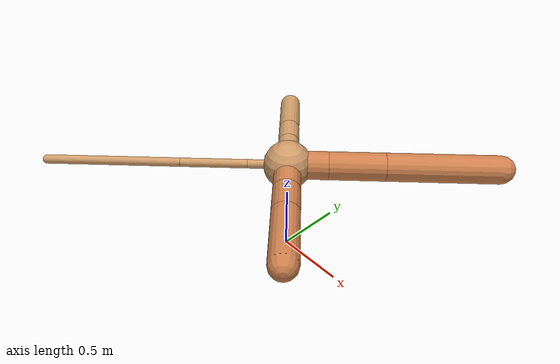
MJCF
<?xml version="1.0" ?>
<mujoco model="ant">

	<compiler angle="degree" coordinate="local" inertiafromgeom="true"/>

	<option integrator="RK4" timestep="0.01"/>

	<custom>

		<numeric data="0.0 0.0 0.55 1.0 0.0 0.0 0.0 0.0 1.0 0.0 -1.0 0.0 -1.0 0.0 1.0" name="init_qpos"/>

	</custom>

	<default>

		<joint armature="1" damping="1" limited="true"/>

		<geom conaffinity="0" condim="3" density="5.0" friction="1.5 0.1 0.1" margin="0.01" rgba="0.8 0.6 0.4 1"/>

	</default>

	<worldbody>

		<body name="torso" pos="0 0 0.75">

			<geom name="torso_geom" pos="0 0 0" size="0.17243809206507027" type="sphere"/>

			<!--joint armature="0" damping="0" limited="false" margin="0.01" name="root" pos="0 0 0" type="free"/-->

			<body name="front_left_leg" pos="0 0 0">

				<geom fromto="0 0 0 0.2 0.2 0" name="aux_1_geom" size="0.1010420614900034" type="capsule" rgba=".8 .5 .3 1"/>

				<body name="aux_1" pos="0.2 0.2 0">

					<joint axis="0 0 1" name="hip_1" pos="0.0 0.0 0.0" range="-40 40" type="hinge"/>

					<geom fromto="0 0 0 0.2792444368539824 0.2792444368539824 0" name="left_leg_geom" size="0.1010420614900034" type="capsule" rgba=".8 .5 .3 1"/>

					<body pos="0.2792444368539824 0.2792444368539824 0" name="front_left_foot">

						<joint axis="-1 1 0" name="ankle_1" pos="0.0 0.0 0.0" range="30 100" type="hinge"/>

						<geom fromto="0 0 0 0.5584888737079649 0.5584888737079649 0" name="left_ankle_geom" size="0.1010420614900034" type="capsule" rgba=".8 .5 .3 1"/>

					</body>

				</body>

			</body>

			<body name="front_right_leg" pos="0 0 0">

				<geom fromto="0 0 0 -0.2 0.2 0" name="aux_2_geom" size="0.077967659428572" type="capsule"/>

				<body name="aux_2" pos="-0.2 0.2 0">

					<joint axis="0 0 1" name="hip_2" pos="0.0 0.0 0.0" range="-40 40" type="hinge"/>

					<geom fromto="0 0 0 -0.134573913710464 0.134573913710464 0" name="right_leg_geom" size="0.077967659428572" type="capsule"/>

					<body pos="-0.134573913710464 0.134573913710464 0" name="front_right_foot">

						<joint axis="1 1 0" name="ankle_2" pos="0.0 0.0 0.0" range="-100 -30" type="hinge"/>

						<geom fromto="0 0 0 -0.269147827420928 0.269147827420928 0" name="right_ankle_geom" size="0.077967659428572" type="capsule"/>

					</body>

				</body>

			</body>

			<body name="left_back_leg" pos="0 0 0">

				<geom fromto="0 0 0 -0.2 -0.2 0" name="aux_3_geom" size="0.03216996767587141" type="capsule"/>

				<body name="aux_3" pos="-0.2 -0.2 0">

					<joint axis="0 0 1" name="hip_3" pos="0.0 0.0 0.0" range="-40 40" type="hinge"/>

					<geom fromto="0 0 0 -0.33614367359498837 -0.33614367359498837 0" name="back_leg_geom" size="0.03216996767587141" type="capsule"/>

					<body pos="-0.33614367359498837 -0.33614367359498837 0" name="left_back_foot">

						<joint axis="-1 1 0" name="ankle_3" pos="0.0 0.0 0.0" range="-100 -30" type="hinge"/>

						<geom fromto="0 0 0 -0.6722873471899767 -0.6722873471899767 0" name="third_ankle_geom" size="0.03216996767587141" type="capsule"/>

					</body>

				</body>

			</body>

			<body name="right_back_leg" pos="0 0 0">

				<geom fromto="0 0 0 0.2 -0.2 0" name="aux_4_geom" size="0.09535437962994742" type="capsule" rgba=".8 .5 .3 1"/>

				<body name="aux_4" pos="0.2 -0.2 0">

					<joint axis="0 0 1" name="hip_4" pos="0.0 0.0 0.0" range="-40 40" type="hinge"/>

					<geom fromto="0 0 0 0.15670829545157577 -0.15670829545157577 0" name="rightback_leg_geom" size="0.09535437962994742" type="capsule" rgba=".8 .5 .3 1"/>

					<body pos="0.15670829545157577 -0.15670829545157577 0" name="right_back_foot">

						<joint axis="1 1 0" name="ankle_4" pos="0.0 0.0 0.0" range="30 100" type="hinge"/>

						<geom fromto="0 0 0 0.31341659090315155 -0.31341659090315155 0" name="fourth_ankle_geom" size="0.09535437962994742" type="capsule" rgba=".8 .5 .3 1"/>

					</body>

				</body>

			</body>

		</body>

	</worldbody>

	<actuator>

		<motor ctrllimited="true" ctrlrange="-1.0 1.0" joint="hip_4" gear="150"/>

		<motor ctrllimited="true" ctrlrange="-1.0 1.0" joint="ankle_4" gear="150"/>

		<motor ctrllimited="true" ctrlrange="-1.0 1.0" joint="hip_1" gear="150"/>

		<motor ctrllimited="true" ctrlrange="-1.0 1.0" joint="ankle_1" gear="150"/>

		<motor ctrllimited="true" ctrlrange="-1.0 1.0" joint="hip_2" gear="150"/>

		<motor ctrllimited="true" ctrlrange="-1.0 1.0" joint="ankle_2" gear="150"/>

		<motor ctrllimited="true" ctrlrange="-1.0 1.0" joint="hip_3" gear="150"/>

		<motor ctrllimited="true" ctrlrange="-1.0 1.0" joint="ankle_3" gear="150"/>

	</actuator>

</mujoco>
